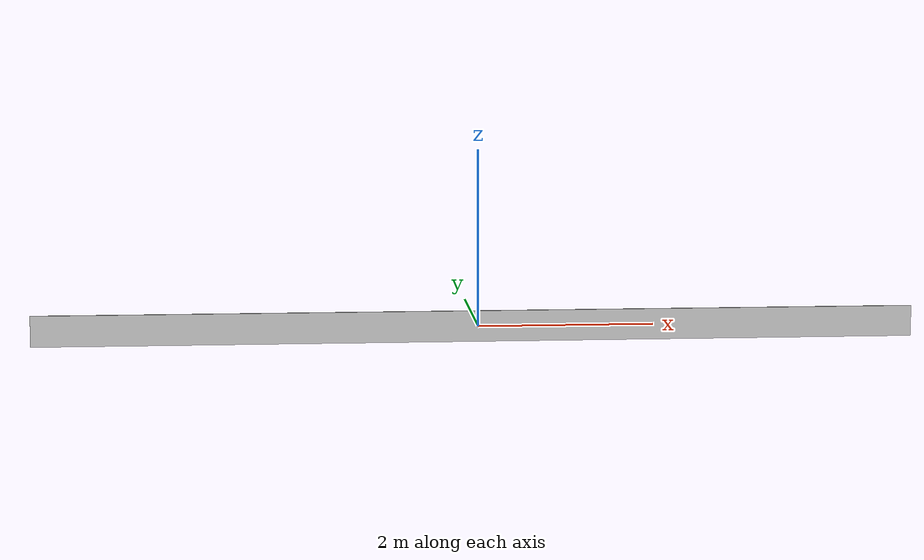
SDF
<?xml version='1.0'?>
<sdf version="1.6">
    <model name="wall_logo{index}">
        <static>true</static>
        <link name="link">
            <collision name="collision">
                <geometry>
                    <mesh>
                        <scale>1 1 1</scale>
                        <uri>package://ros_gz_example_description/models/wall_logo/meshes/wall_logo.stl</uri>
                    </mesh>
                </geometry>
            </collision>

            <visual name="visual">
                <geometry>
                    <mesh>
                        <uri>package://ros_gz_example_description/models/wall_logo/meshes/wall_logo.dae</uri>
                    </mesh>
                </geometry>
            </visual>
        </link>
    </model>
</sdf>
